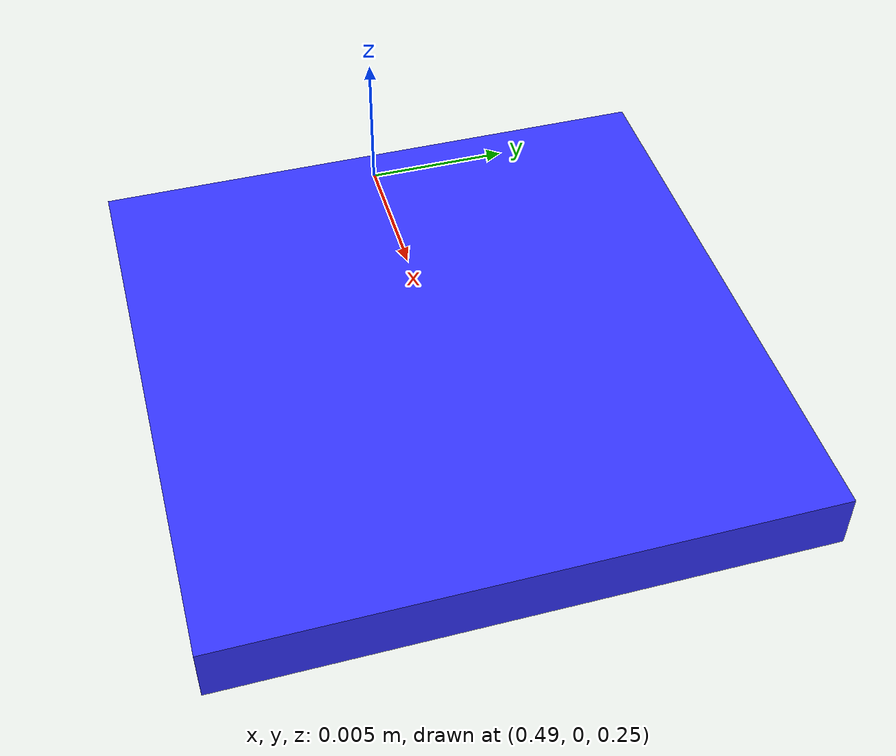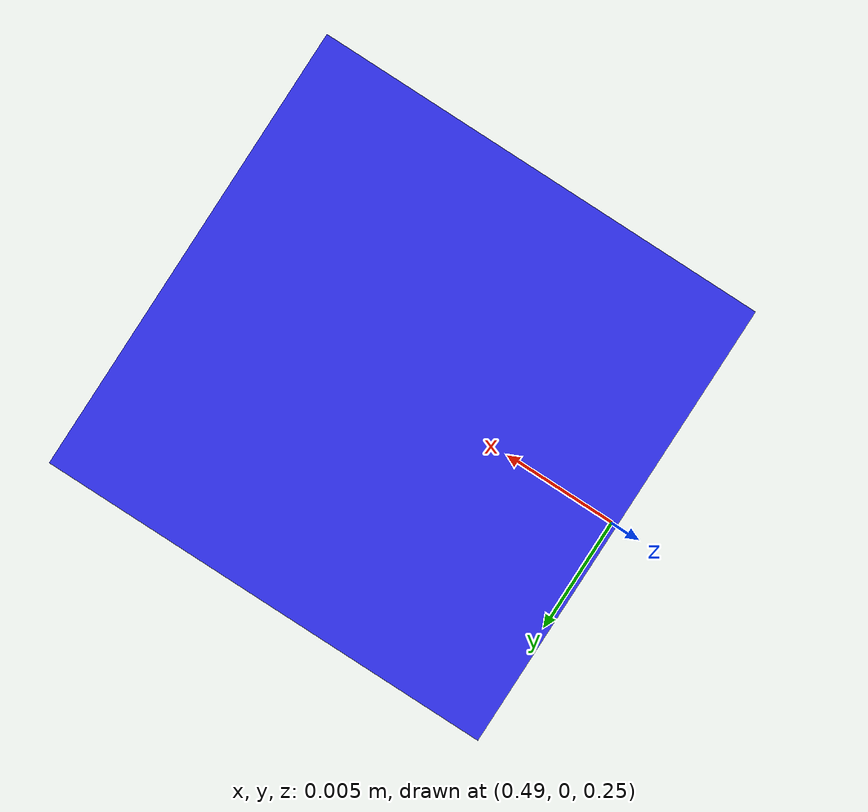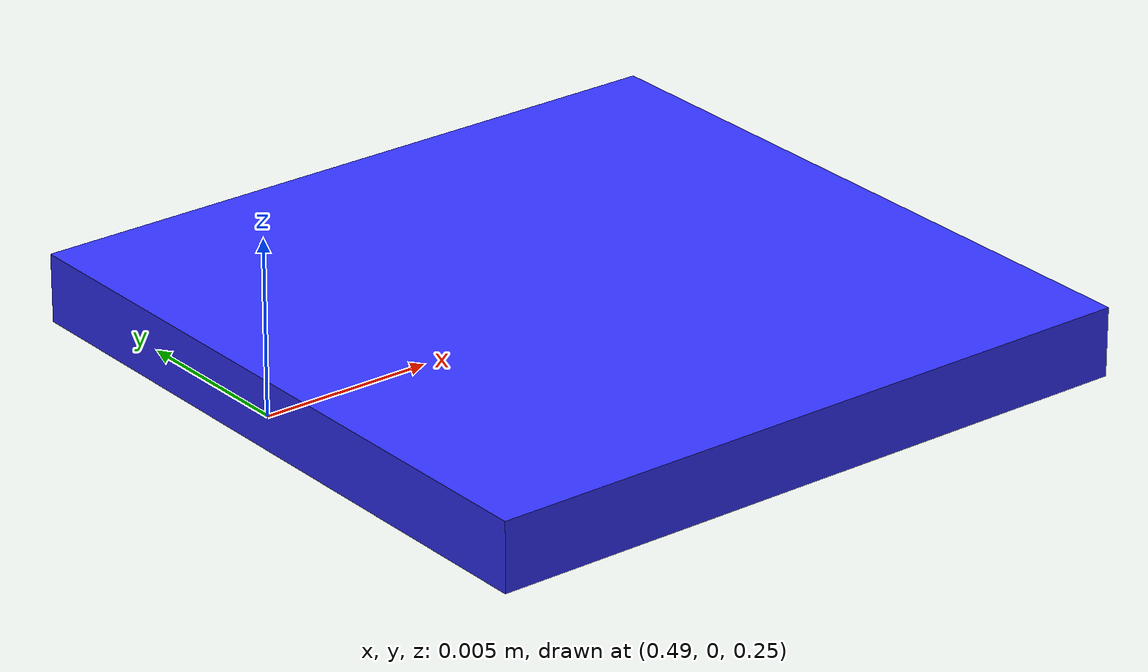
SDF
<?xml version="1.0" ?>
<sdf version="1.6">
  <world name="scene8_rfid_distance">

    <include>
      <uri>model://sun</uri>
    </include>

    <include>
      <uri>model://ground_plane</uri>
    </include>

    <!-- A single tag that we'll move away from the reader with /gazebo/set_model_state -->
    <model name="rfid_tag_1">
      <pose>0.5 0 0.25 0 0 0</pose>
      <static>false</static>

      <link name="link">
        <!-- make it easy to teleport with set_model_state -->
        <gravity>false</gravity>
        <kinematic>true</kinematic>

        <collision name="collision">
          <geometry>
            <box><size>0.02 0.02 0.002</size></box>
          </geometry>
        </collision>

        <visual name="visual">
          <geometry>
            <box><size>0.02 0.02 0.002</size></box>
          </geometry>
          <material>
            <ambient>0.2 0.2 1 1</ambient>
            <diffuse>0.2 0.2 1 1</diffuse>
          </material>
        </visual>
      </link>
    </model>

  </world>
</sdf>
